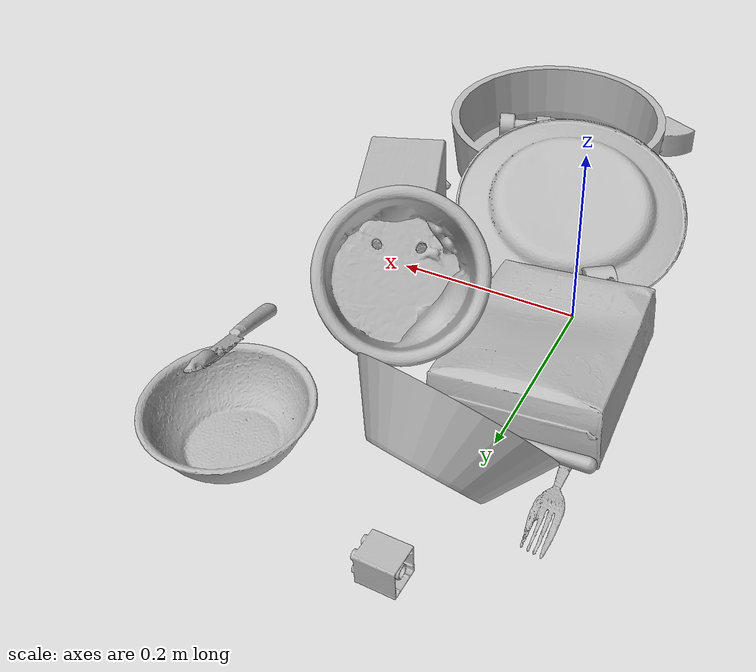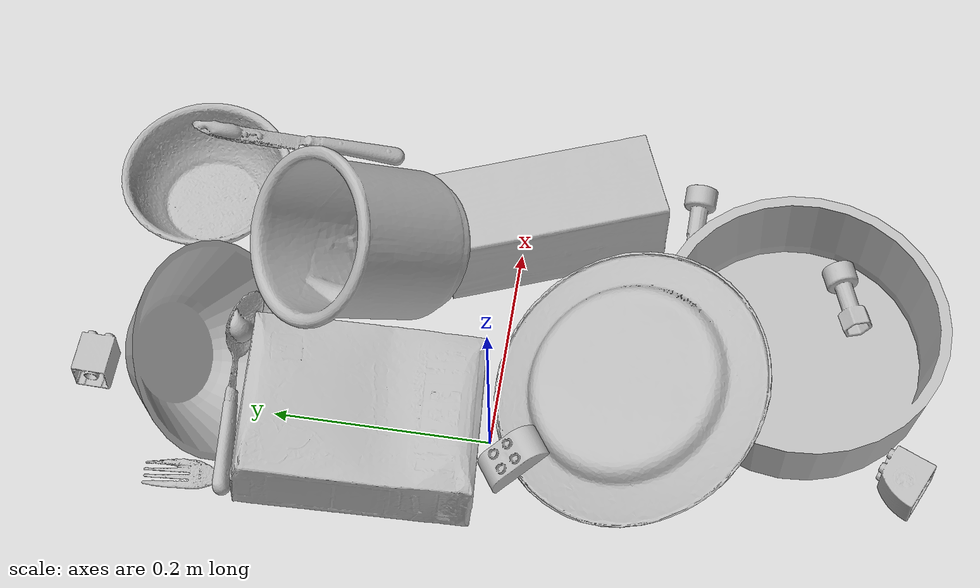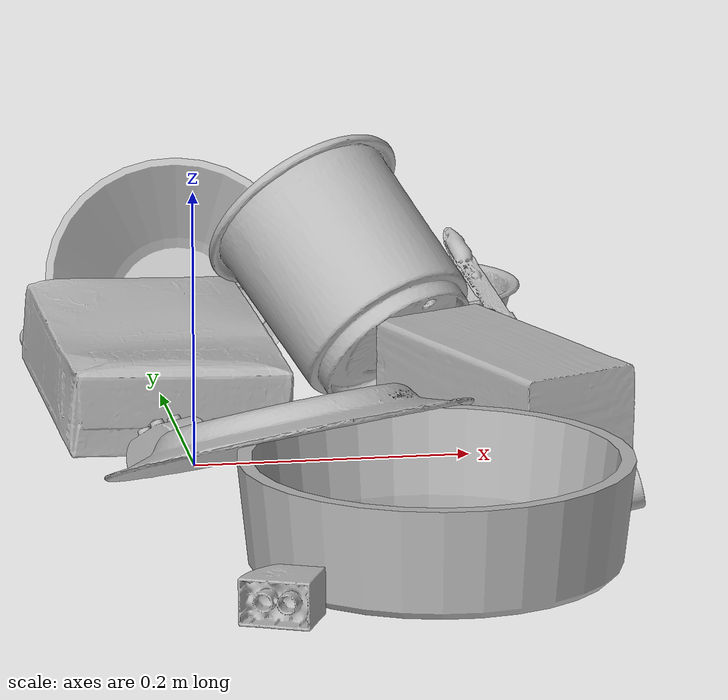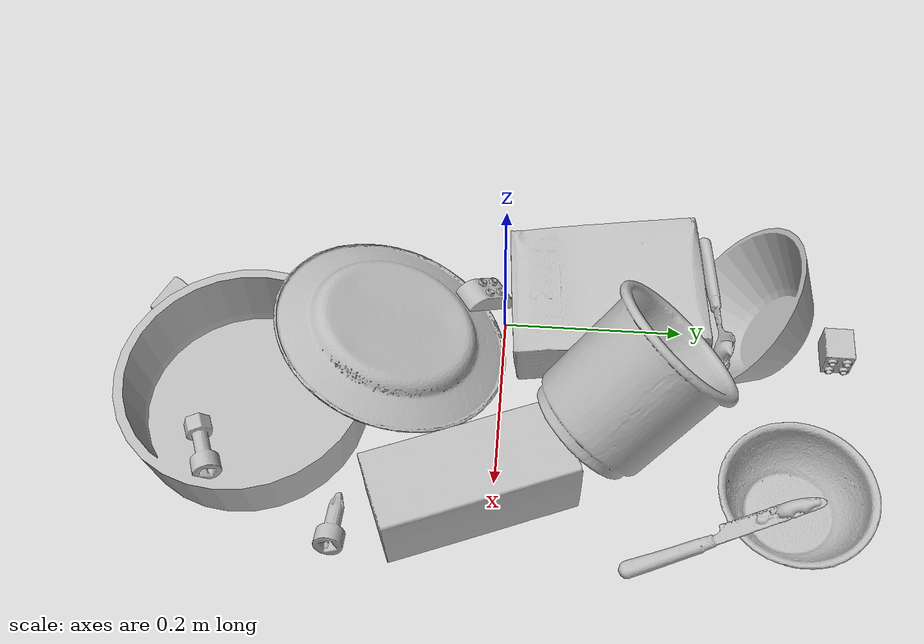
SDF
<sdf version="1.4">
  <world name="default">
    <light name="light1" type="point">
      <pose>0 0 1 0 0 0</pose>
      <diffuse>3 3 3 1</diffuse>
      <specular>3 3 3 1</specular>
    </light>
    <light name="light2" type="point">
      <pose>0 0.5 2 0 0 0</pose>
      <diffuse>1 1 1 1</diffuse>
      <specular>1 1 1 1</specular>
    </light>
    <light name="light3" type="point">
      <pose>0 0.5 2 0 0 0</pose>
      <diffuse>3 3 3 1</diffuse>
      <specular>3 3 3 1</specular>
    </light>
    <scene>
      <ambient>0.7 0.7 0.7</ambient>
    </scene>
    <model name="plate1">
      <link name="link_plate1">
        <collision name="default">
          <geometry>
            <mesh>
              <uri>model://pan_tefal/collision_meshes/collision.obj</uri>
              <scale>1.0 1.0 1.0</scale>
            </mesh>
          </geometry>
          <surface>
            <friction>
              <ode>
                <mu>0.5</mu>
                <mu2>0.5</mu2>
              </ode>
            </friction>
          <contact>
        <ode>
            <max_vel>0</max_vel>
            <min_depth>0.0001</min_depth>
            <kp>1e8</kp>
        </ode>
    </contact></surface>
        </collision>
        <visual name="default">
          <geometry>
            <mesh>
              <uri>model://pan_tefal/visual_meshes/visual.dae</uri>
              <scale>1.0 1.0 1.0</scale>
            </mesh>
          </geometry>
        </visual>
        <inertial>
          <mass>1.083925485610962</mass>
          <pose>-0.00018002053548116237 3.279013617429882e-05 -0.00851493701338768 0.000819031166138591 -0.00033013701589440335 -0.33186472787035126</pose>
          <inertia>
            <ixx>0.0074822875</ixx>
            <iyy>0.0075305253</iyy>
            <izz>0.013773448</izz>
            <ixy>0</ixy>
            <ixz>0</ixz>
            <iyz>0</iyz>
          </inertia>
        </inertial>
      </link>
      <pose>0.1269223541021347 -0.2665537893772125 0.037977542728185654 0.0003919675904981452 0.00039804069340906433 1.221326967799886</pose>
    </model>
    <model name="plate2">
      <link name="link_plate2">
        <collision name="default">
          <geometry>
            <mesh>
              <uri>model://plate/collision_meshes/collision.obj</uri>
              <scale>1.0 1.0 1.0</scale>
            </mesh>
          </geometry>
          <surface>
            <friction>
              <ode>
                <mu>0.5</mu>
                <mu2>0.5</mu2>
              </ode>
            </friction>
          <contact>
        <ode>
            <max_vel>0</max_vel>
            <min_depth>0.0001</min_depth>
            <kp>1e8</kp>
        </ode>
    </contact></surface>
        </collision>
        <visual name="default">
          <geometry>
            <mesh>
              <uri>model://plate/visual_meshes/visual.dae</uri>
              <scale>1.0 1.0 1.0</scale>
            </mesh>
          </geometry>
        </visual>
        <inertial>
          <mass>0.26740342378616333</mass>
          <pose>-0.00060446304269135 0.00027825793949887156 -0.0010561994276940823 0.0022187903743134635 -0.0032254779444460427 0.4526079808055429</pose>
          <inertia>
            <ixx>0.0012509191</ixx>
            <iyy>0.0012389544</iyy>
            <izz>0.00244661</izz>
            <ixy>0</ixy>
            <ixz>0</ixz>
            <iyz>0</iyz>
          </inertia>
        </inertial>
      </link>
      <pose>0.04946061223745346 -0.11616872251033783 0.05855392664670944 2.964878728452511 0.32319552195954376 1.535122800019574</pose>
    </model>
    <model name="bowl1">
      <link name="link_bowl1">
        <collision name="default">
          <geometry>
            <mesh>
              <uri>model://bowl/collision_meshes/collision.obj</uri>
              <scale>1.0 1.0 1.0</scale>
            </mesh>
          </geometry>
          <surface>
            <friction>
              <ode>
                <mu>0.5</mu>
                <mu2>0.5</mu2>
              </ode>
            </friction>
          <contact>
        <ode>
            <max_vel>0</max_vel>
            <min_depth>0.0001</min_depth>
            <kp>1e8</kp>
        </ode>
    </contact></surface>
        </collision>
        <visual name="default">
          <geometry>
            <mesh>
              <uri>model://bowl/visual_meshes/visual.dae</uri>
              <scale>1.0 1.0 1.0</scale>
            </mesh>
          </geometry>
        </visual>
        <inertial>
          <mass>0.062040042132139206</mass>
          <pose>0.00020445157133508474 -0.001030211104080081 -0.0008042659028433263 -0.01576411046463803 0.014546752923574583 0.7140383763158871</pose>
          <inertia>
            <ixx>0.00014251085</ixx>
            <iyy>0.0001393266</iyy>
            <izz>0.00023975229</izz>
            <ixy>0</ixy>
            <ixz>0</ixz>
            <iyz>0</iyz>
          </inertia>
        </inertial>
      </link>
      <pose>0.21597281098365784 0.3060198724269867 0.027780551463365555 1.4113279464069784e-05 9.728464613586446e-08 1.2002705782448357</pose>
    </model>
    <model name="bowl2">
      <link name="link_bowl2">
        <collision name="default">
          <geometry>
            <mesh>
              <uri>model://bowl_a/collision_meshes/collision.obj</uri>
              <scale>1.0 1.0 1.0</scale>
            </mesh>
          </geometry>
          <surface>
            <friction>
              <ode>
                <mu>0.5</mu>
                <mu2>0.5</mu2>
              </ode>
            </friction>
          <contact>
        <ode>
            <max_vel>0</max_vel>
            <min_depth>0.0001</min_depth>
            <kp>1e8</kp>
        </ode>
    </contact></surface>
        </collision>
        <visual name="default">
          <geometry>
            <mesh>
              <uri>model://bowl_a/visual_meshes/visual.dae</uri>
              <scale>1.0 1.0 1.0</scale>
            </mesh>
          </geometry>
        </visual>
        <inertial>
          <mass>0.2882154881954193</mass>
          <pose>0.00027867534663528204 4.731079752673395e-05 -0.0013765293406322598 -0.0009805311525578244 -0.0010938248781945461 -0.19124031319294812</pose>
          <inertia>
            <ixx>0.00082056265</ixx>
            <iyy>0.0008256004</iyy>
            <izz>0.001459402</izz>
            <ixy>0</ixy>
            <ixz>0</ixz>
            <iyz>0</iyz>
          </inertia>
        </inertial>
      </link>
      <pose>0.020293692126870155 0.27000510692596436 0.06387520581483841 -0.9534525427451448 0.08823392366327766 3.0275290736981777</pose>
    </model>
    <model name="silverware1">
      <link name="link_silverware1">
        <collision name="default">
          <geometry>
            <mesh>
              <uri>model://fork/collision_meshes/collision.obj</uri>
              <scale>1.0 1.0 1.0</scale>
            </mesh>
          </geometry>
          <surface>
            <friction>
              <ode>
                <mu>0.5</mu>
                <mu2>0.5</mu2>
              </ode>
            </friction>
          <contact>
        <ode>
            <max_vel>0</max_vel>
            <min_depth>0.0001</min_depth>
            <kp>1e8</kp>
        </ode>
    </contact></surface>
        </collision>
        <visual name="default">
          <geometry>
            <mesh>
              <uri>model://fork/visual_meshes/visual.dae</uri>
              <scale>1.0 1.0 1.0</scale>
            </mesh>
          </geometry>
        </visual>
        <inertial>
          <mass>0.01398836076259613</mass>
          <pose>-0.02957003563642502 0.00046588244731538 0.0003218861238565296 -0.013550934691899108 -0.010977833142804767 0.01445389655901604</pose>
          <inertia>
            <ixx>4.903713e-07</ixx>
            <iyy>3.6519592e-05</iyy>
            <izz>3.673893e-05</izz>
            <ixy>0</ixy>
            <ixz>0</ixz>
            <iyz>0</iyz>
          </inertia>
        </inertial>
      </link>
      <pose>-0.07124950736761093 0.2047916054725647 0.010244361124932766 2.9583122216036135 -0.028757956125202905 1.667201628266924</pose>
    </model>
    <model name="box1">
      <link name="link_box1">
        <collision name="default">
          <geometry>
            <mesh>
              <uri>model://cracker_box/collision_meshes/collision.obj</uri>
              <scale>1.0 1.0 1.0</scale>
            </mesh>
          </geometry>
          <surface>
            <friction>
              <ode>
                <mu>0.5</mu>
                <mu2>0.5</mu2>
              </ode>
            </friction>
          <contact>
        <ode>
            <max_vel>0</max_vel>
            <min_depth>0.0001</min_depth>
            <kp>1e8</kp>
        </ode>
    </contact></surface>
        </collision>
        <visual name="default">
          <geometry>
            <mesh>
              <uri>model://cracker_box/visual_meshes/visual.dae</uri>
              <scale>1.0 1.0 1.0</scale>
            </mesh>
          </geometry>
        </visual>
        <inertial>
          <mass>3.3038947582244873</mass>
          <pose>0.0009464139584451914 0.00025434247800149024 -0.0017029535956680775 -0.00031620753779881404 -0.011106489600569465 0.002546794535826719</pose>
          <inertia>
            <ixx>0.008403633</ixx>
            <iyy>0.013876048</iyy>
            <izz>0.019802397</izz>
            <ixy>0</ixy>
            <ixz>0</ixz>
            <iyz>0</iyz>
          </inertia>
        </inertial>
      </link>
      <pose>-0.013888145796954632 0.11342491954565048 0.047211967408657074 0.034324749530907174 -0.09516428960408187 1.6463758932869272</pose>
    </model>
    <model name="box2">
      <link name="link_box2">
        <collision name="default">
          <geometry>
            <mesh>
              <uri>model://wood_block/collision_meshes/collision.obj</uri>
              <scale>1.0 1.0 1.0</scale>
            </mesh>
          </geometry>
          <surface>
            <friction>
              <ode>
                <mu>0.5</mu>
                <mu2>0.5</mu2>
              </ode>
            </friction>
          <contact>
        <ode>
            <max_vel>0</max_vel>
            <min_depth>0.0001</min_depth>
            <kp>1e8</kp>
        </ode>
    </contact></surface>
        </collision>
        <visual name="default">
          <geometry>
            <mesh>
              <uri>model://wood_block/visual_meshes/visual.dae</uri>
              <scale>1.0 1.0 1.0</scale>
            </mesh>
          </geometry>
        </visual>
        <inertial>
          <mass>1.8317598104476929</mass>
          <pose>-5.813315510749817e-06 -0.000570809468626976 0.0002640858292579651 -0.05220774405774941 -0.005192695034541599 -0.006861378043904631</pose>
          <inertia>
            <ixx>0.0024511719</ixx>
            <iyy>0.0077432534</iyy>
            <izz>0.007714289</izz>
            <ixy>0</ixy>
            <ixz>0</ixz>
            <iyz>0</iyz>
          </inertia>
        </inertial>
      </link>
      <pose>0.21962565183639526 -0.022059764713048935 0.045700181275606155 1.5681606371623626 -0.0069370895433671495 1.95122931561922</pose>
    </model>
    <model name="cup1">
      <link name="link_cup1">
        <collision name="default">
          <geometry>
            <mesh>
              <uri>model://f_cups/collision_meshes/collision.obj</uri>
              <scale>2.0 2.0 2.0</scale>
            </mesh>
          </geometry>
          <surface>
            <friction>
              <ode>
                <mu>0.5</mu>
                <mu2>0.5</mu2>
              </ode>
            </friction>
          <contact>
        <ode>
            <max_vel>0</max_vel>
            <min_depth>0.0001</min_depth>
            <kp>1e8</kp>
        </ode>
    </contact></surface>
        </collision>
        <visual name="default">
          <geometry>
            <mesh>
              <uri>model://f_cups/visual_meshes/visual.dae</uri>
              <scale>2.0 2.0 2.0</scale>
            </mesh>
          </geometry>
        </visual>
        <inertial>
          <mass>0.8281989693641663</mass>
          <pose>-0.006342937704175711 -0.0012480166042223573 -0.007311076857149601 0.7862278170542254 -0.2607923358756499 -0.18237381375543787</pose>
          <inertia>
            <ixx>0.003114117</ixx>
            <iyy>0.0032667436</iyy>
            <izz>0.0034007723</izz>
            <ixy>0</ixy>
            <ixz>0</ixz>
            <iyz>0</iyz>
          </inertia>
        </inertial>
      </link>
      <pose>0.13374872505664825 0.13275794684886932 0.10312455147504807 -0.6981394560382743 -0.5955637931787128 -0.012286749333064584</pose>
    </model>
    <model name="silverware2">
      <link name="link_silverware2">
        <collision name="default">
          <geometry>
            <mesh>
              <uri>model://knife/collision_meshes/collision.obj</uri>
              <scale>1.0 1.0 1.0</scale>
            </mesh>
          </geometry>
          <surface>
            <friction>
              <ode>
                <mu>0.5</mu>
                <mu2>0.5</mu2>
              </ode>
            </friction>
          <contact>
        <ode>
            <max_vel>0</max_vel>
            <min_depth>0.0001</min_depth>
            <kp>1e8</kp>
        </ode>
    </contact></surface>
        </collision>
        <visual name="default">
          <geometry>
            <mesh>
              <uri>model://knife/visual_meshes/visual.dae</uri>
              <scale>1.0 1.0 1.0</scale>
            </mesh>
          </geometry>
        </visual>
        <inertial>
          <mass>0.033610157668590546</mass>
          <pose>-0.02378525771200657 0.0015275131445378065 5.0620201363926753e-05 0.07305356746503441 0.01724842347870745 -0.0074098216508425</pose>
          <inertia>
            <ixx>9.539925e-07</ixx>
            <iyy>0.00012912478</iyy>
            <izz>0.00012943202</izz>
            <ixy>0</ixy>
            <ixz>0</ixz>
            <iyz>0</iyz>
          </inertia>
        </inertial>
      </link>
      <pose>0.2654675543308258 0.22543638944625854 0.04934098944067955 -3.11836767910621 -0.4276617726237575 1.841856878733119</pose>
    </model>
    <model name="silverware3">
      <link name="link_silverware3">
        <collision name="default">
          <geometry>
            <mesh>
              <uri>model://spoon/collision_meshes/collision.obj</uri>
              <scale>1.0 1.0 1.0</scale>
            </mesh>
          </geometry>
          <surface>
            <friction>
              <ode>
                <mu>0.5</mu>
                <mu2>0.5</mu2>
              </ode>
            </friction>
          <contact>
        <ode>
            <max_vel>0</max_vel>
            <min_depth>0.0001</min_depth>
            <kp>1e8</kp>
        </ode>
    </contact></surface>
        </collision>
        <visual name="default">
          <geometry>
            <mesh>
              <uri>model://spoon/visual_meshes/visual.dae</uri>
              <scale>1.0 1.0 1.0</scale>
            </mesh>
          </geometry>
        </visual>
        <inertial>
          <mass>0.03036251850426197</mass>
          <pose>-0.005526314955204725 -0.0016034168656915426 -0.0007271655485965312 0.035217258575681115 -0.03906584346489495 0.006150616147242728</pose>
          <inertia>
            <ixx>1.6888126e-06</ixx>
            <iyy>0.00011552838</iyy>
            <izz>0.00011636122</izz>
            <ixy>0</ixy>
            <ixz>0</ixz>
            <iyz>0</iyz>
          </inertia>
        </inertial>
      </link>
      <pose>-0.006009197793900967 0.23130711913108826 0.050030361860990524 1.0597909209121927 -0.05194264126336604 0.10482481472088849</pose>
    </model>
    <model name="toy1">
      <link name="link_toy1">
        <collision name="default">
          <geometry>
            <mesh>
              <uri>model://d_lego_duplo/collision_meshes/collision.obj</uri>
              <scale>1.0 1.0 1.0</scale>
            </mesh>
          </geometry>
          <surface>
            <friction>
              <ode>
                <mu>0.5</mu>
                <mu2>0.5</mu2>
              </ode>
            </friction>
          <contact>
        <ode>
            <max_vel>0</max_vel>
            <min_depth>0.0001</min_depth>
            <kp>1e8</kp>
        </ode>
    </contact></surface>
        </collision>
        <visual name="default">
          <geometry>
            <mesh>
              <uri>model://d_lego_duplo/visual_meshes/visual.dae</uri>
              <scale>1.0 1.0 1.0</scale>
            </mesh>
          </geometry>
        </visual>
        <inertial>
          <mass>0.05888136848807335</mass>
          <pose>0.00283056334592402 0.00016366125782951713 0.0008589810458943248 0.0801088994423302 -0.3835518637869403 0.0010296847698221781</pose>
          <inertia>
            <ixx>1.1398561e-05</ixx>
            <iyy>1.6177655e-05</iyy>
            <izz>1.5601077e-05</izz>
            <ixy>0</ixy>
            <ixz>0</ixz>
            <iyz>0</iyz>
          </inertia>
        </inertial>
      </link>
      <pose>0.009142233058810234 -0.3691313564777374 0.016380811110138893 -1.5706313056330379 -0.007910616250598225 -0.42506031395683314</pose>
    </model>
    <model name="toy2">
      <link name="link_toy2">
        <collision name="default">
          <geometry>
            <mesh>
              <uri>model://d_toy_airplane/collision_meshes/collision.obj</uri>
              <scale>1.0 1.0 1.0</scale>
            </mesh>
          </geometry>
          <surface>
            <friction>
              <ode>
                <mu>0.5</mu>
                <mu2>0.5</mu2>
              </ode>
            </friction>
          <contact>
        <ode>
            <max_vel>0</max_vel>
            <min_depth>0.0001</min_depth>
            <kp>1e8</kp>
        </ode>
    </contact></surface>
        </collision>
        <visual name="default">
          <geometry>
            <mesh>
              <uri>model://d_toy_airplane/visual_meshes/visual.dae</uri>
              <scale>1.0 1.0 1.0</scale>
            </mesh>
          </geometry>
        </visual>
        <inertial>
          <mass>0.019283337518572807</mass>
          <pose>9.410297934664413e-05 -5.809335198136978e-05 -0.011728096753358841 0.00026677547083937895 0.00467899750463603 0.5194224971352938</pose>
          <inertia>
            <ixx>5.7807692e-06</ixx>
            <iyy>5.78513e-06</iyy>
            <izz>1.7452522e-06</izz>
            <ixy>0</ixy>
            <ixz>0</ixz>
            <iyz>0</iyz>
          </inertia>
        </inertial>
      </link>
      <pose>0.2569279372692108 -0.16124781966209412 0.011361245065927505 -2.3017970137986956 1.2476187953966869 0.8349598306945181</pose>
    </model>
    <model name="toy3">
      <link name="link_toy3">
        <collision name="default">
          <geometry>
            <mesh>
              <uri>model://b_lego_duplo/collision_meshes/collision.obj</uri>
              <scale>1.0 1.0 1.0</scale>
            </mesh>
          </geometry>
          <surface>
            <friction>
              <ode>
                <mu>0.5</mu>
                <mu2>0.5</mu2>
              </ode>
            </friction>
          <contact>
        <ode>
            <max_vel>0</max_vel>
            <min_depth>0.0001</min_depth>
            <kp>1e8</kp>
        </ode>
    </contact></surface>
        </collision>
        <visual name="default">
          <geometry>
            <mesh>
              <uri>model://b_lego_duplo/visual_meshes/visual.dae</uri>
              <scale>1.0 1.0 1.0</scale>
            </mesh>
          </geometry>
        </visual>
        <inertial>
          <mass>0.03460631147027016</mass>
          <pose>-0.00011053022171836346 -9.15238524612505e-06 0.0019294291269034147 -0.037494934713503944 -0.026353982766830427 0.45190023703794546</pose>
          <inertia>
            <ixx>7.082442e-06</ixx>
            <iyy>7.1300533e-06</iyy>
            <izz>6.310225e-06</izz>
            <ixy>0</ixy>
            <ixz>0</ixz>
            <iyz>0</iyz>
          </inertia>
        </inertial>
      </link>
      <pose>0.02378777228295803 0.3708202540874481 0.016121311113238335 1.5723752704007932 -0.012011326546890229 1.5561043151897545</pose>
    </model>
    <model name="toy4">
      <link name="link_toy4">
        <collision name="default">
          <geometry>
            <mesh>
              <uri>model://c_toy_airplane/collision_meshes/collision.obj</uri>
              <scale>1.0 1.0 1.0</scale>
            </mesh>
          </geometry>
          <surface>
            <friction>
              <ode>
                <mu>0.5</mu>
                <mu2>0.5</mu2>
              </ode>
            </friction>
          <contact>
        <ode>
            <max_vel>0</max_vel>
            <min_depth>0.0001</min_depth>
            <kp>1e8</kp>
        </ode>
    </contact></surface>
        </collision>
        <visual name="default">
          <geometry>
            <mesh>
              <uri>model://c_toy_airplane/visual_meshes/visual.dae</uri>
              <scale>1.0 1.0 1.0</scale>
            </mesh>
          </geometry>
        </visual>
        <inertial>
          <mass>0.03008922003209591</mass>
          <pose>-0.00023024248366709799 -4.429292062013701e-07 -0.006080532446503639 -0.006192764609865116 -0.016797726061543002 0.7654936540566961</pose>
          <inertia>
            <ixx>1.3816358e-05</ixx>
            <iyy>1.3777365e-05</iyy>
            <izz>3.2438072e-06</izz>
            <ixy>0</ixy>
            <ixz>0</ixz>
            <iyz>0</iyz>
          </inertia>
        </inertial>
      </link>
      <pose>0.18714165687561035 -0.3088585436344147 0.02246449515223503 1.6203618634998254 -1.1782505372970613 -1.2464433084069364</pose>
    </model>
    <model name="toy5">
      <link name="link_toy5">
        <collision name="default">
          <geometry>
            <mesh>
              <uri>model://a_lego_duplo/collision_meshes/collision.obj</uri>
              <scale>1.0 1.0 1.0</scale>
            </mesh>
          </geometry>
          <surface>
            <friction>
              <ode>
                <mu>0.5</mu>
                <mu2>0.5</mu2>
              </ode>
            </friction>
          <contact>
        <ode>
            <max_vel>0</max_vel>
            <min_depth>0.0001</min_depth>
            <kp>1e8</kp>
        </ode>
    </contact></surface>
        </collision>
        <visual name="default">
          <geometry>
            <mesh>
              <uri>model://a_lego_duplo/visual_meshes/visual.dae</uri>
              <scale>1.0 1.0 1.0</scale>
            </mesh>
          </geometry>
        </visual>
        <inertial>
          <mass>0.02472195029258728</mass>
          <pose>-0.00011337580508552492 0.00018517558055464178 0.0003692609316203743 -0.014116968053030856 -0.00012565531185804749 6.140757465531037e-05</pose>
          <inertia>
            <ixx>3.1695524e-06</ixx>
            <iyy>7.100487e-06</iyy>
            <izz>8.795534e-06</izz>
            <ixy>0</ixy>
            <ixz>0</ixz>
            <iyz>0</iyz>
          </inertia>
        </inertial>
      </link>
      <pose>-0.024140022695064545 -0.020947160199284554 0.02699998952448368 -0.0003377246993427756 0.5616148369200962 2.1767669930073072</pose>
    </model>
  <physics type="ode">
      <max_contacts>50</max_contacts>
      <ode>
        <solver>
          <type>quick</type>
          <iters>75</iters>
        </solver>
        <constraints>
          <contact_max_correcting_vel>0</contact_max_correcting_vel>
          <contact_surface_layer>0</contact_surface_layer>
        </constraints>
      </ode>
    </physics></world>
</sdf>
